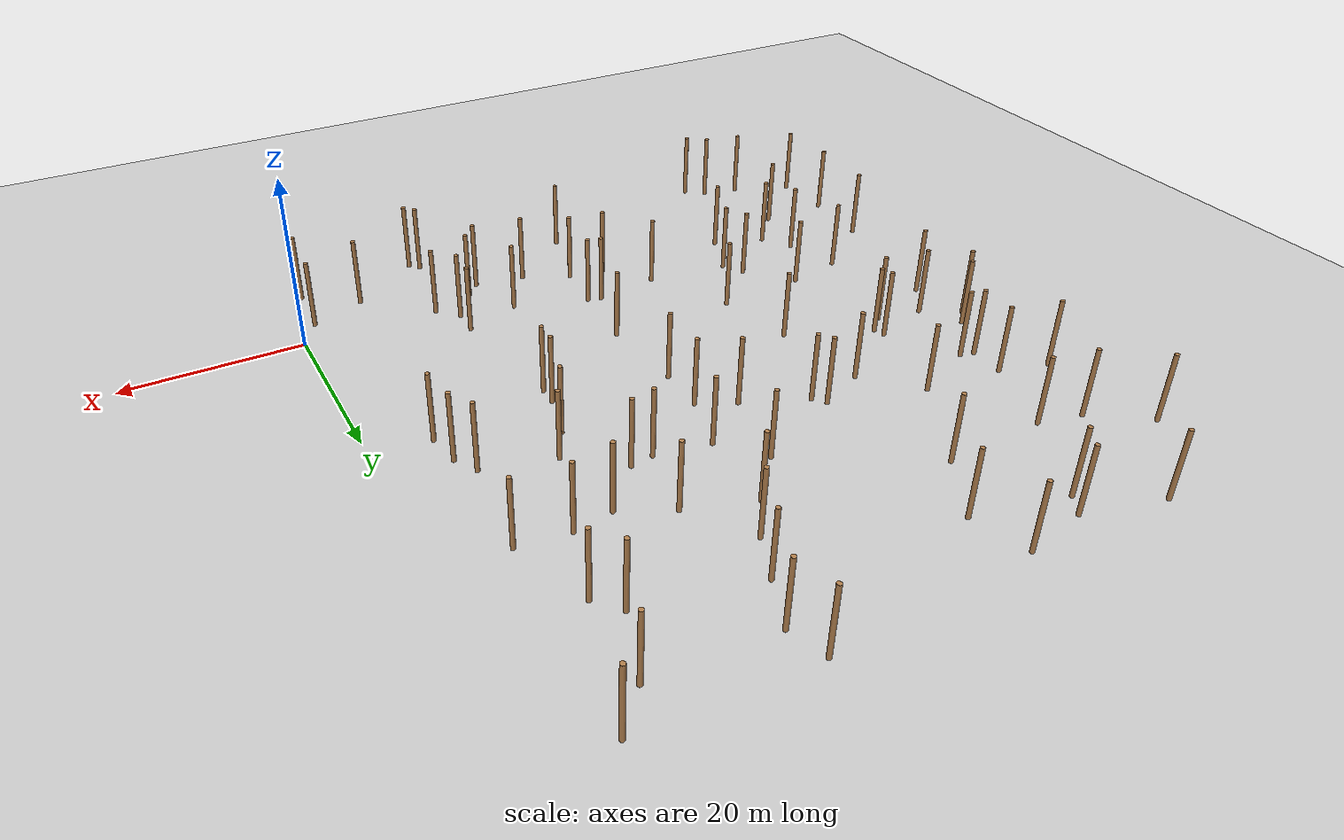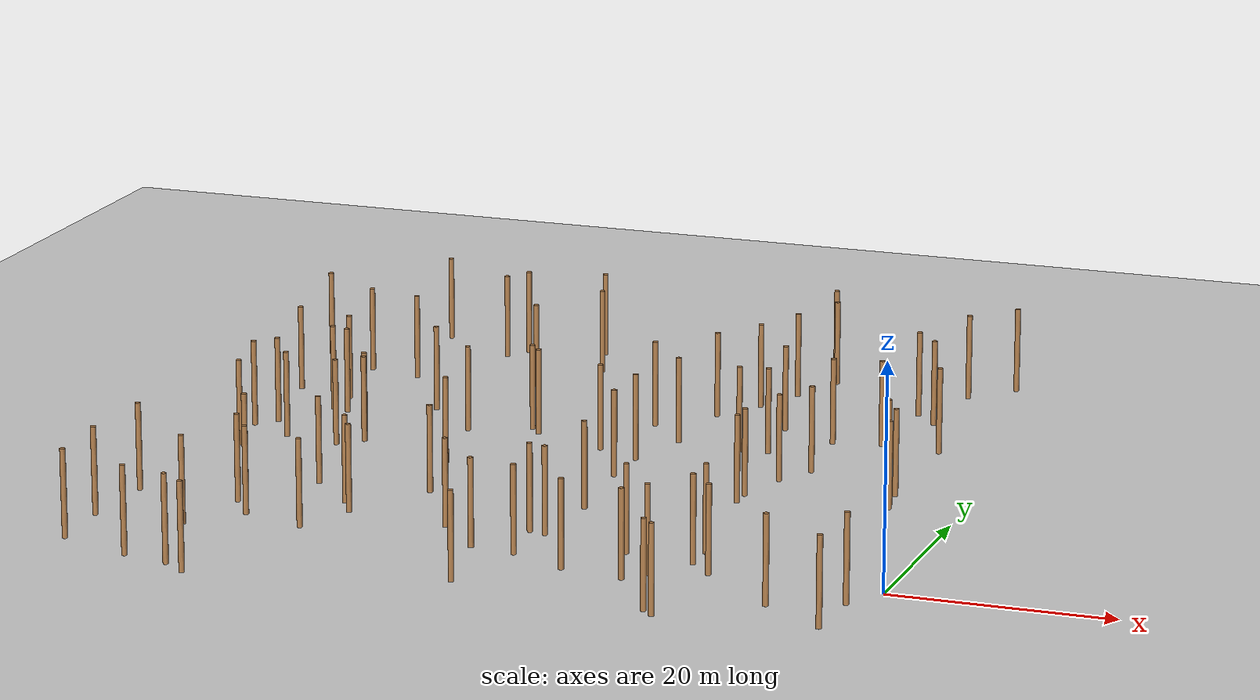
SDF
<sdf version="1.5">
 <world name="padure_tactica">
  <include><uri>model://sun</uri></include>
  <include><uri>model://ground_plane</uri></include>
  <model name="tree_4">
   <static>true</static>
   <pose>-70.86 -2.13 4.0 0 0 0</pose>
   <link name="link">
    <collision name="collision">
     <geometry><cylinder><radius>0.25</radius><length>8.0</length></cylinder></geometry>
    </collision>
    <visual name="visual">
     <geometry><cylinder><radius>0.25</radius><length>8.0</length></cylinder></geometry>
     <material>
      <script><uri>file://media/materials/scripts/gazebo.material</uri><name>Gazebo/Wood</name></script>
     </material>
    </visual>
   </link>
  </model>
  <model name="tree_5">
   <static>true</static>
   <pose>-52.74 0.58 4.0 0 0 0</pose>
   <link name="link">
    <collision name="collision">
     <geometry><cylinder><radius>0.25</radius><length>8.0</length></cylinder></geometry>
    </collision>
    <visual name="visual">
     <geometry><cylinder><radius>0.25</radius><length>8.0</length></cylinder></geometry>
     <material>
      <script><uri>file://media/materials/scripts/gazebo.material</uri><name>Gazebo/Wood</name></script>
     </material>
    </visual>
   </link>
  </model>
  <model name="tree_21">
   <static>true</static>
   <pose>-40.96 5.01 4.0 0 0 0</pose>
   <link name="link">
    <collision name="collision">
     <geometry><cylinder><radius>0.25</radius><length>8.0</length></cylinder></geometry>
    </collision>
    <visual name="visual">
     <geometry><cylinder><radius>0.25</radius><length>8.0</length></cylinder></geometry>
     <material>
      <script><uri>file://media/materials/scripts/gazebo.material</uri><name>Gazebo/Wood</name></script>
     </material>
    </visual>
   </link>
  </model>
  <model name="tree_25">
   <static>true</static>
   <pose>-22.64 59.68 4.0 0 0 0</pose>
   <link name="link">
    <collision name="collision">
     <geometry><cylinder><radius>0.25</radius><length>8.0</length></cylinder></geometry>
    </collision>
    <visual name="visual">
     <geometry><cylinder><radius>0.25</radius><length>8.0</length></cylinder></geometry>
     <material>
      <script><uri>file://media/materials/scripts/gazebo.material</uri><name>Gazebo/Wood</name></script>
     </material>
    </visual>
   </link>
  </model>
  <model name="tree_26">
   <static>true</static>
   <pose>-58.63 2.52 4.0 0 0 0</pose>
   <link name="link">
    <collision name="collision">
     <geometry><cylinder><radius>0.25</radius><length>8.0</length></cylinder></geometry>
    </collision>
    <visual name="visual">
     <geometry><cylinder><radius>0.25</radius><length>8.0</length></cylinder></geometry>
     <material>
      <script><uri>file://media/materials/scripts/gazebo.material</uri><name>Gazebo/Wood</name></script>
     </material>
    </visual>
   </link>
  </model>
  <model name="tree_35">
   <static>true</static>
   <pose>-57.13 -14.29 4.0 0 0 0</pose>
   <link name="link">
    <collision name="collision">
     <geometry><cylinder><radius>0.25</radius><length>8.0</length></cylinder></geometry>
    </collision>
    <visual name="visual">
     <geometry><cylinder><radius>0.25</radius><length>8.0</length></cylinder></geometry>
     <material>
      <script><uri>file://media/materials/scripts/gazebo.material</uri><name>Gazebo/Wood</name></script>
     </material>
    </visual>
   </link>
  </model>
  <model name="tree_52">
   <static>true</static>
   <pose>-7.11 40.73 4.0 0 0 0</pose>
   <link name="link">
    <collision name="collision">
     <geometry><cylinder><radius>0.25</radius><length>8.0</length></cylinder></geometry>
    </collision>
    <visual name="visual">
     <geometry><cylinder><radius>0.25</radius><length>8.0</length></cylinder></geometry>
     <material>
      <script><uri>file://media/materials/scripts/gazebo.material</uri><name>Gazebo/Wood</name></script>
     </material>
    </visual>
   </link>
  </model>
  <model name="tree_57">
   <static>true</static>
   <pose>-32.07 5.71 4.0 0 0 0</pose>
   <link name="link">
    <collision name="collision">
     <geometry><cylinder><radius>0.25</radius><length>8.0</length></cylinder></geometry>
    </collision>
    <visual name="visual">
     <geometry><cylinder><radius>0.25</radius><length>8.0</length></cylinder></geometry>
     <material>
      <script><uri>file://media/materials/scripts/gazebo.material</uri><name>Gazebo/Wood</name></script>
     </material>
    </visual>
   </link>
  </model>
  <model name="tree_63">
   <static>true</static>
   <pose>-15.31 -0.07 4.0 0 0 0</pose>
   <link name="link">
    <collision name="collision">
     <geometry><cylinder><radius>0.25</radius><length>8.0</length></cylinder></geometry>
    </collision>
    <visual name="visual">
     <geometry><cylinder><radius>0.25</radius><length>8.0</length></cylinder></geometry>
     <material>
      <script><uri>file://media/materials/scripts/gazebo.material</uri><name>Gazebo/Wood</name></script>
     </material>
    </visual>
   </link>
  </model>
  <model name="tree_66">
   <static>true</static>
   <pose>-46.84 62.08 4.0 0 0 0</pose>
   <link name="link">
    <collision name="collision">
     <geometry><cylinder><radius>0.25</radius><length>8.0</length></cylinder></geometry>
    </collision>
    <visual name="visual">
     <geometry><cylinder><radius>0.25</radius><length>8.0</length></cylinder></geometry>
     <material>
      <script><uri>file://media/materials/scripts/gazebo.material</uri><name>Gazebo/Wood</name></script>
     </material>
    </visual>
   </link>
  </model>
  <model name="tree_82">
   <static>true</static>
   <pose>-59.31 -12.72 4.0 0 0 0</pose>
   <link name="link">
    <collision name="collision">
     <geometry><cylinder><radius>0.25</radius><length>8.0</length></cylinder></geometry>
    </collision>
    <visual name="visual">
     <geometry><cylinder><radius>0.25</radius><length>8.0</length></cylinder></geometry>
     <material>
      <script><uri>file://media/materials/scripts/gazebo.material</uri><name>Gazebo/Wood</name></script>
     </material>
    </visual>
   </link>
  </model>
  <model name="tree_89">
   <static>true</static>
   <pose>-33.60 6.09 4.0 0 0 0</pose>
   <link name="link">
    <collision name="collision">
     <geometry><cylinder><radius>0.25</radius><length>8.0</length></cylinder></geometry>
    </collision>
    <visual name="visual">
     <geometry><cylinder><radius>0.25</radius><length>8.0</length></cylinder></geometry>
     <material>
      <script><uri>file://media/materials/scripts/gazebo.material</uri><name>Gazebo/Wood</name></script>
     </material>
    </visual>
   </link>
  </model>
  <model name="tree_106">
   <static>true</static>
   <pose>-57.95 27.94 4.0 0 0 0</pose>
   <link name="link">
    <collision name="collision">
     <geometry><cylinder><radius>0.25</radius><length>8.0</length></cylinder></geometry>
    </collision>
    <visual name="visual">
     <geometry><cylinder><radius>0.25</radius><length>8.0</length></cylinder></geometry>
     <material>
      <script><uri>file://media/materials/scripts/gazebo.material</uri><name>Gazebo/Wood</name></script>
     </material>
    </visual>
   </link>
  </model>
  <model name="tree_145">
   <static>true</static>
   <pose>-7.04 26.79 4.0 0 0 0</pose>
   <link name="link">
    <collision name="collision">
     <geometry><cylinder><radius>0.25</radius><length>8.0</length></cylinder></geometry>
    </collision>
    <visual name="visual">
     <geometry><cylinder><radius>0.25</radius><length>8.0</length></cylinder></geometry>
     <material>
      <script><uri>file://media/materials/scripts/gazebo.material</uri><name>Gazebo/Wood</name></script>
     </material>
    </visual>
   </link>
  </model>
  <model name="tree_158">
   <static>true</static>
   <pose>-32.26 29.53 4.0 0 0 0</pose>
   <link name="link">
    <collision name="collision">
     <geometry><cylinder><radius>0.25</radius><length>8.0</length></cylinder></geometry>
    </collision>
    <visual name="visual">
     <geometry><cylinder><radius>0.25</radius><length>8.0</length></cylinder></geometry>
     <material>
      <script><uri>file://media/materials/scripts/gazebo.material</uri><name>Gazebo/Wood</name></script>
     </material>
    </visual>
   </link>
  </model>
  <model name="tree_238">
   <static>true</static>
   <pose>-30.40 36.09 4.0 0 0 0</pose>
   <link name="link">
    <collision name="collision">
     <geometry><cylinder><radius>0.25</radius><length>8.0</length></cylinder></geometry>
    </collision>
    <visual name="visual">
     <geometry><cylinder><radius>0.25</radius><length>8.0</length></cylinder></geometry>
     <material>
      <script><uri>file://media/materials/scripts/gazebo.material</uri><name>Gazebo/Wood</name></script>
     </material>
    </visual>
   </link>
  </model>
  <model name="tree_253">
   <static>true</static>
   <pose>-2.39 -10.32 4.0 0 0 0</pose>
   <link name="link">
    <collision name="collision">
     <geometry><cylinder><radius>0.25</radius><length>8.0</length></cylinder></geometry>
    </collision>
    <visual name="visual">
     <geometry><cylinder><radius>0.25</radius><length>8.0</length></cylinder></geometry>
     <material>
      <script><uri>file://media/materials/scripts/gazebo.material</uri><name>Gazebo/Wood</name></script>
     </material>
    </visual>
   </link>
  </model>
  <model name="tree_270">
   <static>true</static>
   <pose>-20.13 -1.76 4.0 0 0 0</pose>
   <link name="link">
    <collision name="collision">
     <geometry><cylinder><radius>0.25</radius><length>8.0</length></cylinder></geometry>
    </collision>
    <visual name="visual">
     <geometry><cylinder><radius>0.25</radius><length>8.0</length></cylinder></geometry>
     <material>
      <script><uri>file://media/materials/scripts/gazebo.material</uri><name>Gazebo/Wood</name></script>
     </material>
    </visual>
   </link>
  </model>
  <model name="tree_287">
   <static>true</static>
   <pose>-6.45 22.92 4.0 0 0 0</pose>
   <link name="link">
    <collision name="collision">
     <geometry><cylinder><radius>0.25</radius><length>8.0</length></cylinder></geometry>
    </collision>
    <visual name="visual">
     <geometry><cylinder><radius>0.25</radius><length>8.0</length></cylinder></geometry>
     <material>
      <script><uri>file://media/materials/scripts/gazebo.material</uri><name>Gazebo/Wood</name></script>
     </material>
    </visual>
   </link>
  </model>
  <model name="tree_294">
   <static>true</static>
   <pose>-51.79 8.55 4.0 0 0 0</pose>
   <link name="link">
    <collision name="collision">
     <geometry><cylinder><radius>0.25</radius><length>8.0</length></cylinder></geometry>
    </collision>
    <visual name="visual">
     <geometry><cylinder><radius>0.25</radius><length>8.0</length></cylinder></geometry>
     <material>
      <script><uri>file://media/materials/scripts/gazebo.material</uri><name>Gazebo/Wood</name></script>
     </material>
    </visual>
   </link>
  </model>
  <model name="tree_311">
   <static>true</static>
   <pose>-55.10 38.63 4.0 0 0 0</pose>
   <link name="link">
    <collision name="collision">
     <geometry><cylinder><radius>0.25</radius><length>8.0</length></cylinder></geometry>
    </collision>
    <visual name="visual">
     <geometry><cylinder><radius>0.25</radius><length>8.0</length></cylinder></geometry>
     <material>
      <script><uri>file://media/materials/scripts/gazebo.material</uri><name>Gazebo/Wood</name></script>
     </material>
    </visual>
   </link>
  </model>
  <model name="tree_324">
   <static>true</static>
   <pose>-17.07 40.49 4.0 0 0 0</pose>
   <link name="link">
    <collision name="collision">
     <geometry><cylinder><radius>0.25</radius><length>8.0</length></cylinder></geometry>
    </collision>
    <visual name="visual">
     <geometry><cylinder><radius>0.25</radius><length>8.0</length></cylinder></geometry>
     <material>
      <script><uri>file://media/materials/scripts/gazebo.material</uri><name>Gazebo/Wood</name></script>
     </material>
    </visual>
   </link>
  </model>
  <model name="tree_332">
   <static>true</static>
   <pose>-27.45 -2.80 4.0 0 0 0</pose>
   <link name="link">
    <collision name="collision">
     <geometry><cylinder><radius>0.25</radius><length>8.0</length></cylinder></geometry>
    </collision>
    <visual name="visual">
     <geometry><cylinder><radius>0.25</radius><length>8.0</length></cylinder></geometry>
     <material>
      <script><uri>file://media/materials/scripts/gazebo.material</uri><name>Gazebo/Wood</name></script>
     </material>
    </visual>
   </link>
  </model>
  <model name="tree_333">
   <static>true</static>
   <pose>-63.08 62.68 4.0 0 0 0</pose>
   <link name="link">
    <collision name="collision">
     <geometry><cylinder><radius>0.25</radius><length>8.0</length></cylinder></geometry>
    </collision>
    <visual name="visual">
     <geometry><cylinder><radius>0.25</radius><length>8.0</length></cylinder></geometry>
     <material>
      <script><uri>file://media/materials/scripts/gazebo.material</uri><name>Gazebo/Wood</name></script>
     </material>
    </visual>
   </link>
  </model>
  <model name="tree_349">
   <static>true</static>
   <pose>-67.43 30.01 4.0 0 0 0</pose>
   <link name="link">
    <collision name="collision">
     <geometry><cylinder><radius>0.25</radius><length>8.0</length></cylinder></geometry>
    </collision>
    <visual name="visual">
     <geometry><cylinder><radius>0.25</radius><length>8.0</length></cylinder></geometry>
     <material>
      <script><uri>file://media/materials/scripts/gazebo.material</uri><name>Gazebo/Wood</name></script>
     </material>
    </visual>
   </link>
  </model>
  <model name="tree_383">
   <static>true</static>
   <pose>-71.96 53.59 4.0 0 0 0</pose>
   <link name="link">
    <collision name="collision">
     <geometry><cylinder><radius>0.25</radius><length>8.0</length></cylinder></geometry>
    </collision>
    <visual name="visual">
     <geometry><cylinder><radius>0.25</radius><length>8.0</length></cylinder></geometry>
     <material>
      <script><uri>file://media/materials/scripts/gazebo.material</uri><name>Gazebo/Wood</name></script>
     </material>
    </visual>
   </link>
  </model>
  <model name="tree_389">
   <static>true</static>
   <pose>-12.29 51.91 4.0 0 0 0</pose>
   <link name="link">
    <collision name="collision">
     <geometry><cylinder><radius>0.25</radius><length>8.0</length></cylinder></geometry>
    </collision>
    <visual name="visual">
     <geometry><cylinder><radius>0.25</radius><length>8.0</length></cylinder></geometry>
     <material>
      <script><uri>file://media/materials/scripts/gazebo.material</uri><name>Gazebo/Wood</name></script>
     </material>
    </visual>
   </link>
  </model>
  <model name="tree_391">
   <static>true</static>
   <pose>-16.24 -11.88 4.0 0 0 0</pose>
   <link name="link">
    <collision name="collision">
     <geometry><cylinder><radius>0.25</radius><length>8.0</length></cylinder></geometry>
    </collision>
    <visual name="visual">
     <geometry><cylinder><radius>0.25</radius><length>8.0</length></cylinder></geometry>
     <material>
      <script><uri>file://media/materials/scripts/gazebo.material</uri><name>Gazebo/Wood</name></script>
     </material>
    </visual>
   </link>
  </model>
  <model name="tree_396">
   <static>true</static>
   <pose>-5.96 63.05 4.0 0 0 0</pose>
   <link name="link">
    <collision name="collision">
     <geometry><cylinder><radius>0.25</radius><length>8.0</length></cylinder></geometry>
    </collision>
    <visual name="visual">
     <geometry><cylinder><radius>0.25</radius><length>8.0</length></cylinder></geometry>
     <material>
      <script><uri>file://media/materials/scripts/gazebo.material</uri><name>Gazebo/Wood</name></script>
     </material>
    </visual>
   </link>
  </model>
  <model name="tree_413">
   <static>true</static>
   <pose>-54.11 60.39 4.0 0 0 0</pose>
   <link name="link">
    <collision name="collision">
     <geometry><cylinder><radius>0.25</radius><length>8.0</length></cylinder></geometry>
    </collision>
    <visual name="visual">
     <geometry><cylinder><radius>0.25</radius><length>8.0</length></cylinder></geometry>
     <material>
      <script><uri>file://media/materials/scripts/gazebo.material</uri><name>Gazebo/Wood</name></script>
     </material>
    </visual>
   </link>
  </model>
  <model name="tree_418">
   <static>true</static>
   <pose>-64.22 35.55 4.0 0 0 0</pose>
   <link name="link">
    <collision name="collision">
     <geometry><cylinder><radius>0.25</radius><length>8.0</length></cylinder></geometry>
    </collision>
    <visual name="visual">
     <geometry><cylinder><radius>0.25</radius><length>8.0</length></cylinder></geometry>
     <material>
      <script><uri>file://media/materials/scripts/gazebo.material</uri><name>Gazebo/Wood</name></script>
     </material>
    </visual>
   </link>
  </model>
  <model name="tree_441">
   <static>true</static>
   <pose>-70.44 -9.08 4.0 0 0 0</pose>
   <link name="link">
    <collision name="collision">
     <geometry><cylinder><radius>0.25</radius><length>8.0</length></cylinder></geometry>
    </collision>
    <visual name="visual">
     <geometry><cylinder><radius>0.25</radius><length>8.0</length></cylinder></geometry>
     <material>
      <script><uri>file://media/materials/scripts/gazebo.material</uri><name>Gazebo/Wood</name></script>
     </material>
    </visual>
   </link>
  </model>
  <model name="tree_451">
   <static>true</static>
   <pose>-2.13 -3.70 4.0 0 0 0</pose>
   <link name="link">
    <collision name="collision">
     <geometry><cylinder><radius>0.25</radius><length>8.0</length></cylinder></geometry>
    </collision>
    <visual name="visual">
     <geometry><cylinder><radius>0.25</radius><length>8.0</length></cylinder></geometry>
     <material>
      <script><uri>file://media/materials/scripts/gazebo.material</uri><name>Gazebo/Wood</name></script>
     </material>
    </visual>
   </link>
  </model>
  <model name="tree_453">
   <static>true</static>
   <pose>-22.47 43.12 4.0 0 0 0</pose>
   <link name="link">
    <collision name="collision">
     <geometry><cylinder><radius>0.25</radius><length>8.0</length></cylinder></geometry>
    </collision>
    <visual name="visual">
     <geometry><cylinder><radius>0.25</radius><length>8.0</length></cylinder></geometry>
     <material>
      <script><uri>file://media/materials/scripts/gazebo.material</uri><name>Gazebo/Wood</name></script>
     </material>
    </visual>
   </link>
  </model>
  <model name="tree_463">
   <static>true</static>
   <pose>-62.65 35.13 4.0 0 0 0</pose>
   <link name="link">
    <collision name="collision">
     <geometry><cylinder><radius>0.25</radius><length>8.0</length></cylinder></geometry>
    </collision>
    <visual name="visual">
     <geometry><cylinder><radius>0.25</radius><length>8.0</length></cylinder></geometry>
     <material>
      <script><uri>file://media/materials/scripts/gazebo.material</uri><name>Gazebo/Wood</name></script>
     </material>
    </visual>
   </link>
  </model>
  <model name="tree_474">
   <static>true</static>
   <pose>-60.96 48.37 4.0 0 0 0</pose>
   <link name="link">
    <collision name="collision">
     <geometry><cylinder><radius>0.25</radius><length>8.0</length></cylinder></geometry>
    </collision>
    <visual name="visual">
     <geometry><cylinder><radius>0.25</radius><length>8.0</length></cylinder></geometry>
     <material>
      <script><uri>file://media/materials/scripts/gazebo.material</uri><name>Gazebo/Wood</name></script>
     </material>
    </visual>
   </link>
  </model>
  <model name="tree_478">
   <static>true</static>
   <pose>-55.52 58.22 4.0 0 0 0</pose>
   <link name="link">
    <collision name="collision">
     <geometry><cylinder><radius>0.25</radius><length>8.0</length></cylinder></geometry>
    </collision>
    <visual name="visual">
     <geometry><cylinder><radius>0.25</radius><length>8.0</length></cylinder></geometry>
     <material>
      <script><uri>file://media/materials/scripts/gazebo.material</uri><name>Gazebo/Wood</name></script>
     </material>
    </visual>
   </link>
  </model>
  <model name="tree_491">
   <static>true</static>
   <pose>-36.32 31.49 4.0 0 0 0</pose>
   <link name="link">
    <collision name="collision">
     <geometry><cylinder><radius>0.25</radius><length>8.0</length></cylinder></geometry>
    </collision>
    <visual name="visual">
     <geometry><cylinder><radius>0.25</radius><length>8.0</length></cylinder></geometry>
     <material>
      <script><uri>file://media/materials/scripts/gazebo.material</uri><name>Gazebo/Wood</name></script>
     </material>
    </visual>
   </link>
  </model>
  <model name="tree_527">
   <static>true</static>
   <pose>-70.37 5.98 4.0 0 0 0</pose>
   <link name="link">
    <collision name="collision">
     <geometry><cylinder><radius>0.25</radius><length>8.0</length></cylinder></geometry>
    </collision>
    <visual name="visual">
     <geometry><cylinder><radius>0.25</radius><length>8.0</length></cylinder></geometry>
     <material>
      <script><uri>file://media/materials/scripts/gazebo.material</uri><name>Gazebo/Wood</name></script>
     </material>
    </visual>
   </link>
  </model>
  <model name="tree_598">
   <static>true</static>
   <pose>-43.39 34.40 4.0 0 0 0</pose>
   <link name="link">
    <collision name="collision">
     <geometry><cylinder><radius>0.25</radius><length>8.0</length></cylinder></geometry>
    </collision>
    <visual name="visual">
     <geometry><cylinder><radius>0.25</radius><length>8.0</length></cylinder></geometry>
     <material>
      <script><uri>file://media/materials/scripts/gazebo.material</uri><name>Gazebo/Wood</name></script>
     </material>
    </visual>
   </link>
  </model>
  <model name="tree_603">
   <static>true</static>
   <pose>-24.85 54.40 4.0 0 0 0</pose>
   <link name="link">
    <collision name="collision">
     <geometry><cylinder><radius>0.25</radius><length>8.0</length></cylinder></geometry>
    </collision>
    <visual name="visual">
     <geometry><cylinder><radius>0.25</radius><length>8.0</length></cylinder></geometry>
     <material>
      <script><uri>file://media/materials/scripts/gazebo.material</uri><name>Gazebo/Wood</name></script>
     </material>
    </visual>
   </link>
  </model>
  <model name="tree_611">
   <static>true</static>
   <pose>-23.96 63.70 4.0 0 0 0</pose>
   <link name="link">
    <collision name="collision">
     <geometry><cylinder><radius>0.25</radius><length>8.0</length></cylinder></geometry>
    </collision>
    <visual name="visual">
     <geometry><cylinder><radius>0.25</radius><length>8.0</length></cylinder></geometry>
     <material>
      <script><uri>file://media/materials/scripts/gazebo.material</uri><name>Gazebo/Wood</name></script>
     </material>
    </visual>
   </link>
  </model>
  <model name="tree_615">
   <static>true</static>
   <pose>-69.77 40.94 4.0 0 0 0</pose>
   <link name="link">
    <collision name="collision">
     <geometry><cylinder><radius>0.25</radius><length>8.0</length></cylinder></geometry>
    </collision>
    <visual name="visual">
     <geometry><cylinder><radius>0.25</radius><length>8.0</length></cylinder></geometry>
     <material>
      <script><uri>file://media/materials/scripts/gazebo.material</uri><name>Gazebo/Wood</name></script>
     </material>
    </visual>
   </link>
  </model>
  <model name="tree_623">
   <static>true</static>
   <pose>-23.74 3.12 4.0 0 0 0</pose>
   <link name="link">
    <collision name="collision">
     <geometry><cylinder><radius>0.25</radius><length>8.0</length></cylinder></geometry>
    </collision>
    <visual name="visual">
     <geometry><cylinder><radius>0.25</radius><length>8.0</length></cylinder></geometry>
     <material>
      <script><uri>file://media/materials/scripts/gazebo.material</uri><name>Gazebo/Wood</name></script>
     </material>
    </visual>
   </link>
  </model>
  <model name="tree_638">
   <static>true</static>
   <pose>-8.45 29.30 4.0 0 0 0</pose>
   <link name="link">
    <collision name="collision">
     <geometry><cylinder><radius>0.25</radius><length>8.0</length></cylinder></geometry>
    </collision>
    <visual name="visual">
     <geometry><cylinder><radius>0.25</radius><length>8.0</length></cylinder></geometry>
     <material>
      <script><uri>file://media/materials/scripts/gazebo.material</uri><name>Gazebo/Wood</name></script>
     </material>
    </visual>
   </link>
  </model>
  <model name="tree_646">
   <static>true</static>
   <pose>-32.34 24.07 4.0 0 0 0</pose>
   <link name="link">
    <collision name="collision">
     <geometry><cylinder><radius>0.25</radius><length>8.0</length></cylinder></geometry>
    </collision>
    <visual name="visual">
     <geometry><cylinder><radius>0.25</radius><length>8.0</length></cylinder></geometry>
     <material>
      <script><uri>file://media/materials/scripts/gazebo.material</uri><name>Gazebo/Wood</name></script>
     </material>
    </visual>
   </link>
  </model>
  <model name="tree_652">
   <static>true</static>
   <pose>-21.77 -3.66 4.0 0 0 0</pose>
   <link name="link">
    <collision name="collision">
     <geometry><cylinder><radius>0.25</radius><length>8.0</length></cylinder></geometry>
    </collision>
    <visual name="visual">
     <geometry><cylinder><radius>0.25</radius><length>8.0</length></cylinder></geometry>
     <material>
      <script><uri>file://media/materials/scripts/gazebo.material</uri><name>Gazebo/Wood</name></script>
     </material>
    </visual>
   </link>
  </model>
  <model name="tree_659">
   <static>true</static>
   <pose>-49.13 49.09 4.0 0 0 0</pose>
   <link name="link">
    <collision name="collision">
     <geometry><cylinder><radius>0.25</radius><length>8.0</length></cylinder></geometry>
    </collision>
    <visual name="visual">
     <geometry><cylinder><radius>0.25</radius><length>8.0</length></cylinder></geometry>
     <material>
      <script><uri>file://media/materials/scripts/gazebo.material</uri><name>Gazebo/Wood</name></script>
     </material>
    </visual>
   </link>
  </model>
  <model name="tree_661">
   <static>true</static>
   <pose>-45.00 56.06 4.0 0 0 0</pose>
   <link name="link">
    <collision name="collision">
     <geometry><cylinder><radius>0.25</radius><length>8.0</length></cylinder></geometry>
    </collision>
    <visual name="visual">
     <geometry><cylinder><radius>0.25</radius><length>8.0</length></cylinder></geometry>
     <material>
      <script><uri>file://media/materials/scripts/gazebo.material</uri><name>Gazebo/Wood</name></script>
     </material>
    </visual>
   </link>
  </model>
  <model name="tree_693">
   <static>true</static>
   <pose>-12.69 41.32 4.0 0 0 0</pose>
   <link name="link">
    <collision name="collision">
     <geometry><cylinder><radius>0.25</radius><length>8.0</length></cylinder></geometry>
    </collision>
    <visual name="visual">
     <geometry><cylinder><radius>0.25</radius><length>8.0</length></cylinder></geometry>
     <material>
      <script><uri>file://media/materials/scripts/gazebo.material</uri><name>Gazebo/Wood</name></script>
     </material>
    </visual>
   </link>
  </model>
  <model name="tree_696">
   <static>true</static>
   <pose>-9.57 59.17 4.0 0 0 0</pose>
   <link name="link">
    <collision name="collision">
     <geometry><cylinder><radius>0.25</radius><length>8.0</length></cylinder></geometry>
    </collision>
    <visual name="visual">
     <geometry><cylinder><radius>0.25</radius><length>8.0</length></cylinder></geometry>
     <material>
      <script><uri>file://media/materials/scripts/gazebo.material</uri><name>Gazebo/Wood</name></script>
     </material>
    </visual>
   </link>
  </model>
  <model name="tree_717">
   <static>true</static>
   <pose>-21.65 35.52 4.0 0 0 0</pose>
   <link name="link">
    <collision name="collision">
     <geometry><cylinder><radius>0.25</radius><length>8.0</length></cylinder></geometry>
    </collision>
    <visual name="visual">
     <geometry><cylinder><radius>0.25</radius><length>8.0</length></cylinder></geometry>
     <material>
      <script><uri>file://media/materials/scripts/gazebo.material</uri><name>Gazebo/Wood</name></script>
     </material>
    </visual>
   </link>
  </model>
  <model name="tree_749">
   <static>true</static>
   <pose>-44.45 35.67 4.0 0 0 0</pose>
   <link name="link">
    <collision name="collision">
     <geometry><cylinder><radius>0.25</radius><length>8.0</length></cylinder></geometry>
    </collision>
    <visual name="visual">
     <geometry><cylinder><radius>0.25</radius><length>8.0</length></cylinder></geometry>
     <material>
      <script><uri>file://media/materials/scripts/gazebo.material</uri><name>Gazebo/Wood</name></script>
     </material>
    </visual>
   </link>
  </model>
  <model name="tree_760">
   <static>true</static>
   <pose>-8.26 -6.26 4.0 0 0 0</pose>
   <link name="link">
    <collision name="collision">
     <geometry><cylinder><radius>0.25</radius><length>8.0</length></cylinder></geometry>
    </collision>
    <visual name="visual">
     <geometry><cylinder><radius>0.25</radius><length>8.0</length></cylinder></geometry>
     <material>
      <script><uri>file://media/materials/scripts/gazebo.material</uri><name>Gazebo/Wood</name></script>
     </material>
    </visual>
   </link>
  </model>
  <model name="tree_773">
   <static>true</static>
   <pose>-17.26 -10.90 4.0 0 0 0</pose>
   <link name="link">
    <collision name="collision">
     <geometry><cylinder><radius>0.25</radius><length>8.0</length></cylinder></geometry>
    </collision>
    <visual name="visual">
     <geometry><cylinder><radius>0.25</radius><length>8.0</length></cylinder></geometry>
     <material>
      <script><uri>file://media/materials/scripts/gazebo.material</uri><name>Gazebo/Wood</name></script>
     </material>
    </visual>
   </link>
  </model>
  <model name="tree_784">
   <static>true</static>
   <pose>-50.45 6.16 4.0 0 0 0</pose>
   <link name="link">
    <collision name="collision">
     <geometry><cylinder><radius>0.25</radius><length>8.0</length></cylinder></geometry>
    </collision>
    <visual name="visual">
     <geometry><cylinder><radius>0.25</radius><length>8.0</length></cylinder></geometry>
     <material>
      <script><uri>file://media/materials/scripts/gazebo.material</uri><name>Gazebo/Wood</name></script>
     </material>
    </visual>
   </link>
  </model>
  <model name="tree_795">
   <static>true</static>
   <pose>-67.69 21.80 4.0 0 0 0</pose>
   <link name="link">
    <collision name="collision">
     <geometry><cylinder><radius>0.25</radius><length>8.0</length></cylinder></geometry>
    </collision>
    <visual name="visual">
     <geometry><cylinder><radius>0.25</radius><length>8.0</length></cylinder></geometry>
     <material>
      <script><uri>file://media/materials/scripts/gazebo.material</uri><name>Gazebo/Wood</name></script>
     </material>
    </visual>
   </link>
  </model>
  <model name="tree_819">
   <static>true</static>
   <pose>-32.65 -0.33 4.0 0 0 0</pose>
   <link name="link">
    <collision name="collision">
     <geometry><cylinder><radius>0.25</radius><length>8.0</length></cylinder></geometry>
    </collision>
    <visual name="visual">
     <geometry><cylinder><radius>0.25</radius><length>8.0</length></cylinder></geometry>
     <material>
      <script><uri>file://media/materials/scripts/gazebo.material</uri><name>Gazebo/Wood</name></script>
     </material>
    </visual>
   </link>
  </model>
  <model name="tree_823">
   <static>true</static>
   <pose>-59.52 24.91 4.0 0 0 0</pose>
   <link name="link">
    <collision name="collision">
     <geometry><cylinder><radius>0.25</radius><length>8.0</length></cylinder></geometry>
    </collision>
    <visual name="visual">
     <geometry><cylinder><radius>0.25</radius><length>8.0</length></cylinder></geometry>
     <material>
      <script><uri>file://media/materials/scripts/gazebo.material</uri><name>Gazebo/Wood</name></script>
     </material>
    </visual>
   </link>
  </model>
  <model name="tree_830">
   <static>true</static>
   <pose>-36.78 0.31 4.0 0 0 0</pose>
   <link name="link">
    <collision name="collision">
     <geometry><cylinder><radius>0.25</radius><length>8.0</length></cylinder></geometry>
    </collision>
    <visual name="visual">
     <geometry><cylinder><radius>0.25</radius><length>8.0</length></cylinder></geometry>
     <material>
      <script><uri>file://media/materials/scripts/gazebo.material</uri><name>Gazebo/Wood</name></script>
     </material>
    </visual>
   </link>
  </model>
  <model name="tree_832">
   <static>true</static>
   <pose>-64.75 25.81 4.0 0 0 0</pose>
   <link name="link">
    <collision name="collision">
     <geometry><cylinder><radius>0.25</radius><length>8.0</length></cylinder></geometry>
    </collision>
    <visual name="visual">
     <geometry><cylinder><radius>0.25</radius><length>8.0</length></cylinder></geometry>
     <material>
      <script><uri>file://media/materials/scripts/gazebo.material</uri><name>Gazebo/Wood</name></script>
     </material>
    </visual>
   </link>
  </model>
  <model name="tree_851">
   <static>true</static>
   <pose>-69.04 28.25 4.0 0 0 0</pose>
   <link name="link">
    <collision name="collision">
     <geometry><cylinder><radius>0.25</radius><length>8.0</length></cylinder></geometry>
    </collision>
    <visual name="visual">
     <geometry><cylinder><radius>0.25</radius><length>8.0</length></cylinder></geometry>
     <material>
      <script><uri>file://media/materials/scripts/gazebo.material</uri><name>Gazebo/Wood</name></script>
     </material>
    </visual>
   </link>
  </model>
  <model name="tree_859">
   <static>true</static>
   <pose>-34.21 40.53 4.0 0 0 0</pose>
   <link name="link">
    <collision name="collision">
     <geometry><cylinder><radius>0.25</radius><length>8.0</length></cylinder></geometry>
    </collision>
    <visual name="visual">
     <geometry><cylinder><radius>0.25</radius><length>8.0</length></cylinder></geometry>
     <material>
      <script><uri>file://media/materials/scripts/gazebo.material</uri><name>Gazebo/Wood</name></script>
     </material>
    </visual>
   </link>
  </model>
  <model name="tree_879">
   <static>true</static>
   <pose>-31.49 14.01 4.0 0 0 0</pose>
   <link name="link">
    <collision name="collision">
     <geometry><cylinder><radius>0.25</radius><length>8.0</length></cylinder></geometry>
    </collision>
    <visual name="visual">
     <geometry><cylinder><radius>0.25</radius><length>8.0</length></cylinder></geometry>
     <material>
      <script><uri>file://media/materials/scripts/gazebo.material</uri><name>Gazebo/Wood</name></script>
     </material>
    </visual>
   </link>
  </model>
  <model name="tree_908">
   <static>true</static>
   <pose>-17.40 5.42 4.0 0 0 0</pose>
   <link name="link">
    <collision name="collision">
     <geometry><cylinder><radius>0.25</radius><length>8.0</length></cylinder></geometry>
    </collision>
    <visual name="visual">
     <geometry><cylinder><radius>0.25</radius><length>8.0</length></cylinder></geometry>
     <material>
      <script><uri>file://media/materials/scripts/gazebo.material</uri><name>Gazebo/Wood</name></script>
     </material>
    </visual>
   </link>
  </model>
  <model name="tree_916">
   <static>true</static>
   <pose>-19.54 22.41 4.0 0 0 0</pose>
   <link name="link">
    <collision name="collision">
     <geometry><cylinder><radius>0.25</radius><length>8.0</length></cylinder></geometry>
    </collision>
    <visual name="visual">
     <geometry><cylinder><radius>0.25</radius><length>8.0</length></cylinder></geometry>
     <material>
      <script><uri>file://media/materials/scripts/gazebo.material</uri><name>Gazebo/Wood</name></script>
     </material>
    </visual>
   </link>
  </model>
  <model name="tree_929">
   <static>true</static>
   <pose>-26.95 49.61 4.0 0 0 0</pose>
   <link name="link">
    <collision name="collision">
     <geometry><cylinder><radius>0.25</radius><length>8.0</length></cylinder></geometry>
    </collision>
    <visual name="visual">
     <geometry><cylinder><radius>0.25</radius><length>8.0</length></cylinder></geometry>
     <material>
      <script><uri>file://media/materials/scripts/gazebo.material</uri><name>Gazebo/Wood</name></script>
     </material>
    </visual>
   </link>
  </model>
  <model name="tree_931">
   <static>true</static>
   <pose>-10.13 49.44 4.0 0 0 0</pose>
   <link name="link">
    <collision name="collision">
     <geometry><cylinder><radius>0.25</radius><length>8.0</length></cylinder></geometry>
    </collision>
    <visual name="visual">
     <geometry><cylinder><radius>0.25</radius><length>8.0</length></cylinder></geometry>
     <material>
      <script><uri>file://media/materials/scripts/gazebo.material</uri><name>Gazebo/Wood</name></script>
     </material>
    </visual>
   </link>
  </model>
  <model name="tree_948">
   <static>true</static>
   <pose>-64.20 39.43 4.0 0 0 0</pose>
   <link name="link">
    <collision name="collision">
     <geometry><cylinder><radius>0.25</radius><length>8.0</length></cylinder></geometry>
    </collision>
    <visual name="visual">
     <geometry><cylinder><radius>0.25</radius><length>8.0</length></cylinder></geometry>
     <material>
      <script><uri>file://media/materials/scripts/gazebo.material</uri><name>Gazebo/Wood</name></script>
     </material>
    </visual>
   </link>
  </model>
  <model name="tree_972">
   <static>true</static>
   <pose>-57.51 26.76 4.0 0 0 0</pose>
   <link name="link">
    <collision name="collision">
     <geometry><cylinder><radius>0.25</radius><length>8.0</length></cylinder></geometry>
    </collision>
    <visual name="visual">
     <geometry><cylinder><radius>0.25</radius><length>8.0</length></cylinder></geometry>
     <material>
      <script><uri>file://media/materials/scripts/gazebo.material</uri><name>Gazebo/Wood</name></script>
     </material>
    </visual>
   </link>
  </model>
  <model name="tree_974">
   <static>true</static>
   <pose>-29.82 45.43 4.0 0 0 0</pose>
   <link name="link">
    <collision name="collision">
     <geometry><cylinder><radius>0.25</radius><length>8.0</length></cylinder></geometry>
    </collision>
    <visual name="visual">
     <geometry><cylinder><radius>0.25</radius><length>8.0</length></cylinder></geometry>
     <material>
      <script><uri>file://media/materials/scripts/gazebo.material</uri><name>Gazebo/Wood</name></script>
     </material>
    </visual>
   </link>
  </model>
  <model name="tree_1005">
   <static>true</static>
   <pose>-18.08 27.66 4.0 0 0 0</pose>
   <link name="link">
    <collision name="collision">
     <geometry><cylinder><radius>0.25</radius><length>8.0</length></cylinder></geometry>
    </collision>
    <visual name="visual">
     <geometry><cylinder><radius>0.25</radius><length>8.0</length></cylinder></geometry>
     <material>
      <script><uri>file://media/materials/scripts/gazebo.material</uri><name>Gazebo/Wood</name></script>
     </material>
    </visual>
   </link>
  </model>
  <model name="tree_1006">
   <static>true</static>
   <pose>-62.78 11.82 4.0 0 0 0</pose>
   <link name="link">
    <collision name="collision">
     <geometry><cylinder><radius>0.25</radius><length>8.0</length></cylinder></geometry>
    </collision>
    <visual name="visual">
     <geometry><cylinder><radius>0.25</radius><length>8.0</length></cylinder></geometry>
     <material>
      <script><uri>file://media/materials/scripts/gazebo.material</uri><name>Gazebo/Wood</name></script>
     </material>
    </visual>
   </link>
  </model>
  <model name="tree_1015">
   <static>true</static>
   <pose>-16.17 31.20 4.0 0 0 0</pose>
   <link name="link">
    <collision name="collision">
     <geometry><cylinder><radius>0.25</radius><length>8.0</length></cylinder></geometry>
    </collision>
    <visual name="visual">
     <geometry><cylinder><radius>0.25</radius><length>8.0</length></cylinder></geometry>
     <material>
      <script><uri>file://media/materials/scripts/gazebo.material</uri><name>Gazebo/Wood</name></script>
     </material>
    </visual>
   </link>
  </model>
  <model name="tree_1041">
   <static>true</static>
   <pose>-45.98 14.03 4.0 0 0 0</pose>
   <link name="link">
    <collision name="collision">
     <geometry><cylinder><radius>0.25</radius><length>8.0</length></cylinder></geometry>
    </collision>
    <visual name="visual">
     <geometry><cylinder><radius>0.25</radius><length>8.0</length></cylinder></geometry>
     <material>
      <script><uri>file://media/materials/scripts/gazebo.material</uri><name>Gazebo/Wood</name></script>
     </material>
    </visual>
   </link>
  </model>
  <model name="tree_1043">
   <static>true</static>
   <pose>-63.60 -11.74 4.0 0 0 0</pose>
   <link name="link">
    <collision name="collision">
     <geometry><cylinder><radius>0.25</radius><length>8.0</length></cylinder></geometry>
    </collision>
    <visual name="visual">
     <geometry><cylinder><radius>0.25</radius><length>8.0</length></cylinder></geometry>
     <material>
      <script><uri>file://media/materials/scripts/gazebo.material</uri><name>Gazebo/Wood</name></script>
     </material>
    </visual>
   </link>
  </model>
  <model name="tree_1054">
   <static>true</static>
   <pose>-62.64 -1.92 4.0 0 0 0</pose>
   <link name="link">
    <collision name="collision">
     <geometry><cylinder><radius>0.25</radius><length>8.0</length></cylinder></geometry>
    </collision>
    <visual name="visual">
     <geometry><cylinder><radius>0.25</radius><length>8.0</length></cylinder></geometry>
     <material>
      <script><uri>file://media/materials/scripts/gazebo.material</uri><name>Gazebo/Wood</name></script>
     </material>
    </visual>
   </link>
  </model>
  <model name="tree_1083">
   <static>true</static>
   <pose>-24.25 35.06 4.0 0 0 0</pose>
   <link name="link">
    <collision name="collision">
     <geometry><cylinder><radius>0.25</radius><length>8.0</length></cylinder></geometry>
    </collision>
    <visual name="visual">
     <geometry><cylinder><radius>0.25</radius><length>8.0</length></cylinder></geometry>
     <material>
      <script><uri>file://media/materials/scripts/gazebo.material</uri><name>Gazebo/Wood</name></script>
     </material>
    </visual>
   </link>
  </model>
  <model name="tree_1087">
   <static>true</static>
   <pose>-34.93 -9.00 4.0 0 0 0</pose>
   <link name="link">
    <collision name="collision">
     <geometry><cylinder><radius>0.25</radius><length>8.0</length></cylinder></geometry>
    </collision>
    <visual name="visual">
     <geometry><cylinder><radius>0.25</radius><length>8.0</length></cylinder></geometry>
     <material>
      <script><uri>file://media/materials/scripts/gazebo.material</uri><name>Gazebo/Wood</name></script>
     </material>
    </visual>
   </link>
  </model>
  <model name="tree_1089">
   <static>true</static>
   <pose>-17.46 2.22 4.0 0 0 0</pose>
   <link name="link">
    <collision name="collision">
     <geometry><cylinder><radius>0.25</radius><length>8.0</length></cylinder></geometry>
    </collision>
    <visual name="visual">
     <geometry><cylinder><radius>0.25</radius><length>8.0</length></cylinder></geometry>
     <material>
      <script><uri>file://media/materials/scripts/gazebo.material</uri><name>Gazebo/Wood</name></script>
     </material>
    </visual>
   </link>
  </model>
  <model name="tree_1106">
   <static>true</static>
   <pose>-49.86 33.23 4.0 0 0 0</pose>
   <link name="link">
    <collision name="collision">
     <geometry><cylinder><radius>0.25</radius><length>8.0</length></cylinder></geometry>
    </collision>
    <visual name="visual">
     <geometry><cylinder><radius>0.25</radius><length>8.0</length></cylinder></geometry>
     <material>
      <script><uri>file://media/materials/scripts/gazebo.material</uri><name>Gazebo/Wood</name></script>
     </material>
    </visual>
   </link>
  </model>
  <model name="tree_1111">
   <static>true</static>
   <pose>-19.55 20.26 4.0 0 0 0</pose>
   <link name="link">
    <collision name="collision">
     <geometry><cylinder><radius>0.25</radius><length>8.0</length></cylinder></geometry>
    </collision>
    <visual name="visual">
     <geometry><cylinder><radius>0.25</radius><length>8.0</length></cylinder></geometry>
     <material>
      <script><uri>file://media/materials/scripts/gazebo.material</uri><name>Gazebo/Wood</name></script>
     </material>
    </visual>
   </link>
  </model>
  <model name="tree_1128">
   <static>true</static>
   <pose>-65.97 49.44 4.0 0 0 0</pose>
   <link name="link">
    <collision name="collision">
     <geometry><cylinder><radius>0.25</radius><length>8.0</length></cylinder></geometry>
    </collision>
    <visual name="visual">
     <geometry><cylinder><radius>0.25</radius><length>8.0</length></cylinder></geometry>
     <material>
      <script><uri>file://media/materials/scripts/gazebo.material</uri><name>Gazebo/Wood</name></script>
     </material>
    </visual>
   </link>
  </model>
  <model name="tree_1151">
   <static>true</static>
   <pose>-56.26 13.25 4.0 0 0 0</pose>
   <link name="link">
    <collision name="collision">
     <geometry><cylinder><radius>0.25</radius><length>8.0</length></cylinder></geometry>
    </collision>
    <visual name="visual">
     <geometry><cylinder><radius>0.25</radius><length>8.0</length></cylinder></geometry>
     <material>
      <script><uri>file://media/materials/scripts/gazebo.material</uri><name>Gazebo/Wood</name></script>
     </material>
    </visual>
   </link>
  </model>
  <model name="tree_1167">
   <static>true</static>
   <pose>-60.80 5.72 4.0 0 0 0</pose>
   <link name="link">
    <collision name="collision">
     <geometry><cylinder><radius>0.25</radius><length>8.0</length></cylinder></geometry>
    </collision>
    <visual name="visual">
     <geometry><cylinder><radius>0.25</radius><length>8.0</length></cylinder></geometry>
     <material>
      <script><uri>file://media/materials/scripts/gazebo.material</uri><name>Gazebo/Wood</name></script>
     </material>
    </visual>
   </link>
  </model>
  <model name="tree_1197">
   <static>true</static>
   <pose>-47.97 22.83 4.0 0 0 0</pose>
   <link name="link">
    <collision name="collision">
     <geometry><cylinder><radius>0.25</radius><length>8.0</length></cylinder></geometry>
    </collision>
    <visual name="visual">
     <geometry><cylinder><radius>0.25</radius><length>8.0</length></cylinder></geometry>
     <material>
      <script><uri>file://media/materials/scripts/gazebo.material</uri><name>Gazebo/Wood</name></script>
     </material>
    </visual>
   </link>
  </model>
 </world>
</sdf>
